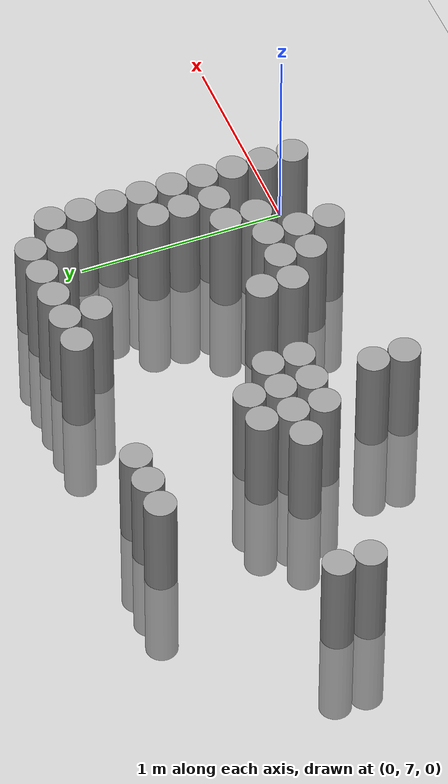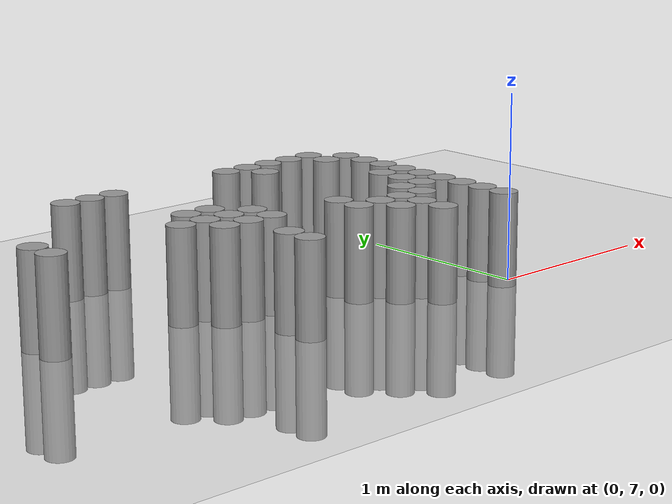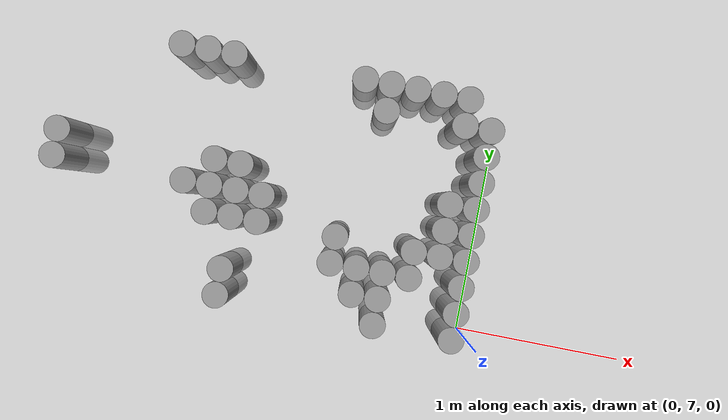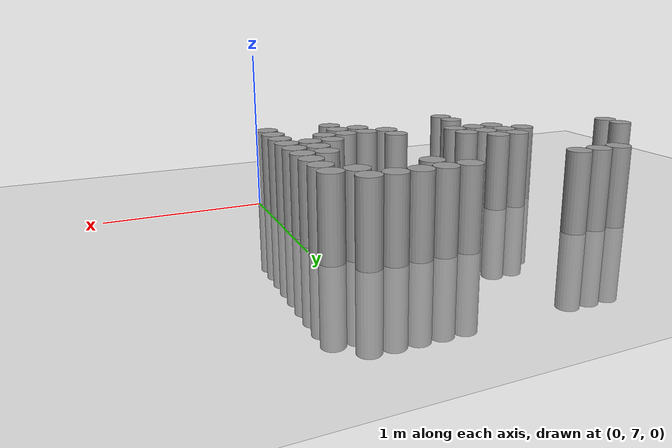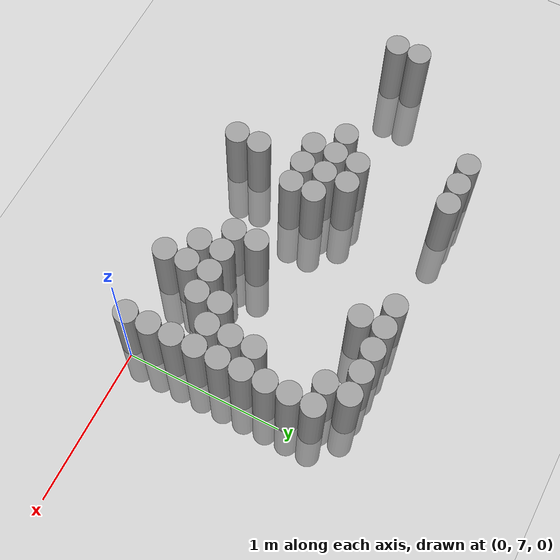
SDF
<sdf version="1.6">
 <world name="default">
  <model name="ground_plane">
   <static>1</static>
   <link name="link">
    <collision name="collision">
     <geometry><plane><normal>0 0 1</normal><size>100 100</size></plane></geometry>
     <surface><friction><ode><mu>100</mu><mu2>50</mu2></ode></friction></surface>
    </collision>
    <visual name="visual">
     <cast_shadows>0</cast_shadows>
     <geometry><plane><normal>0 0 1</normal><size>100 100</size></plane></geometry>
     <material>
      <script><uri>file://media/materials/scripts/gazebo.material</uri><name>Gazebo/Grey</name></script>
     </material>
    </visual>
   </link>
  </model>
  <model name="unit_cylinder_172">
   <pose>-2.475000 7.575000 0.000000 0.000000 0.000000 0.000000</pose>
   <link name="link">
    <inertial>
     <mass>1</mass>
     <inertia><ixx>0.145833</ixx><ixy>0</ixy><ixz>0</ixz><iyy>0.145833</iyy><iyz>0</iyz><izz>0.125</izz></inertia>
    </inertial>
    <collision name="collision">
     <geometry><cylinder><radius>0.075000</radius><length>1</length></cylinder></geometry>
    </collision>
    <visual name="visual">
     <geometry><cylinder><radius>0.075000</radius><length>1</length></cylinder></geometry>
     <material>
      <script><name>Gazebo/Grey</name><uri>file://media/materials/scripts/gazebo.material</uri></script>
     </material>
    </visual>
   </link>
  </model>
  <model name="unit_cylinder_173">
   <pose>-2.475000 7.725000 0.000000 0.000000 0.000000 0.000000</pose>
   <link name="link">
    <inertial>
     <mass>1</mass>
     <inertia><ixx>0.145833</ixx><ixy>0</ixy><ixz>0</ixz><iyy>0.145833</iyy><iyz>0</iyz><izz>0.125</izz></inertia>
    </inertial>
    <collision name="collision">
     <geometry><cylinder><radius>0.075000</radius><length>1</length></cylinder></geometry>
    </collision>
    <visual name="visual">
     <geometry><cylinder><radius>0.075000</radius><length>1</length></cylinder></geometry>
     <material>
      <script><name>Gazebo/Grey</name><uri>file://media/materials/scripts/gazebo.material</uri></script>
     </material>
    </visual>
   </link>
  </model>
  <model name="unit_cylinder_193">
   <pose>-1.875000 8.325000 0.000000 0.000000 0.000000 0.000000</pose>
   <link name="link">
    <inertial>
     <mass>1</mass>
     <inertia><ixx>0.145833</ixx><ixy>0</ixy><ixz>0</ixz><iyy>0.145833</iyy><iyz>0</iyz><izz>0.125</izz></inertia>
    </inertial>
    <collision name="collision">
     <geometry><cylinder><radius>0.075000</radius><length>1</length></cylinder></geometry>
    </collision>
    <visual name="visual">
     <geometry><cylinder><radius>0.075000</radius><length>1</length></cylinder></geometry>
     <material>
      <script><name>Gazebo/Grey</name><uri>file://media/materials/scripts/gazebo.material</uri></script>
     </material>
    </visual>
   </link>
  </model>
  <model name="unit_cylinder_201">
   <pose>-1.725000 7.575000 0.000000 0.000000 0.000000 0.000000</pose>
   <link name="link">
    <inertial>
     <mass>1</mass>
     <inertia><ixx>0.145833</ixx><ixy>0</ixy><ixz>0</ixz><iyy>0.145833</iyy><iyz>0</iyz><izz>0.125</izz></inertia>
    </inertial>
    <collision name="collision">
     <geometry><cylinder><radius>0.075000</radius><length>1</length></cylinder></geometry>
    </collision>
    <visual name="visual">
     <geometry><cylinder><radius>0.075000</radius><length>1</length></cylinder></geometry>
     <material>
      <script><name>Gazebo/Grey</name><uri>file://media/materials/scripts/gazebo.material</uri></script>
     </material>
    </visual>
   </link>
  </model>
  <model name="unit_cylinder_202">
   <pose>-1.725000 8.325000 0.000000 0.000000 0.000000 0.000000</pose>
   <link name="link">
    <inertial>
     <mass>1</mass>
     <inertia><ixx>0.145833</ixx><ixy>0</ixy><ixz>0</ixz><iyy>0.145833</iyy><iyz>0</iyz><izz>0.125</izz></inertia>
    </inertial>
    <collision name="collision">
     <geometry><cylinder><radius>0.075000</radius><length>1</length></cylinder></geometry>
    </collision>
    <visual name="visual">
     <geometry><cylinder><radius>0.075000</radius><length>1</length></cylinder></geometry>
     <material>
      <script><name>Gazebo/Grey</name><uri>file://media/materials/scripts/gazebo.material</uri></script>
     </material>
    </visual>
   </link>
  </model>
  <model name="unit_cylinder_212">
   <pose>-1.575000 7.425000 0.000000 0.000000 0.000000 0.000000</pose>
   <link name="link">
    <inertial>
     <mass>1</mass>
     <inertia><ixx>0.145833</ixx><ixy>0</ixy><ixz>0</ixz><iyy>0.145833</iyy><iyz>0</iyz><izz>0.125</izz></inertia>
    </inertial>
    <collision name="collision">
     <geometry><cylinder><radius>0.075000</radius><length>1</length></cylinder></geometry>
    </collision>
    <visual name="visual">
     <geometry><cylinder><radius>0.075000</radius><length>1</length></cylinder></geometry>
     <material>
      <script><name>Gazebo/Grey</name><uri>file://media/materials/scripts/gazebo.material</uri></script>
     </material>
    </visual>
   </link>
  </model>
  <model name="unit_cylinder_213">
   <pose>-1.575000 7.575000 0.000000 0.000000 0.000000 0.000000</pose>
   <link name="link">
    <inertial>
     <mass>1</mass>
     <inertia><ixx>0.145833</ixx><ixy>0</ixy><ixz>0</ixz><iyy>0.145833</iyy><iyz>0</iyz><izz>0.125</izz></inertia>
    </inertial>
    <collision name="collision">
     <geometry><cylinder><radius>0.075000</radius><length>1</length></cylinder></geometry>
    </collision>
    <visual name="visual">
     <geometry><cylinder><radius>0.075000</radius><length>1</length></cylinder></geometry>
     <material>
      <script><name>Gazebo/Grey</name><uri>file://media/materials/scripts/gazebo.material</uri></script>
     </material>
    </visual>
   </link>
  </model>
  <model name="unit_cylinder_214">
   <pose>-1.575000 7.725000 0.000000 0.000000 0.000000 0.000000</pose>
   <link name="link">
    <inertial>
     <mass>1</mass>
     <inertia><ixx>0.145833</ixx><ixy>0</ixy><ixz>0</ixz><iyy>0.145833</iyy><iyz>0</iyz><izz>0.125</izz></inertia>
    </inertial>
    <collision name="collision">
     <geometry><cylinder><radius>0.075000</radius><length>1</length></cylinder></geometry>
    </collision>
    <visual name="visual">
     <geometry><cylinder><radius>0.075000</radius><length>1</length></cylinder></geometry>
     <material>
      <script><name>Gazebo/Grey</name><uri>file://media/materials/scripts/gazebo.material</uri></script>
     </material>
    </visual>
   </link>
  </model>
  <model name="unit_cylinder_215">
   <pose>-1.575000 8.325000 0.000000 0.000000 0.000000 0.000000</pose>
   <link name="link">
    <inertial>
     <mass>1</mass>
     <inertia><ixx>0.145833</ixx><ixy>0</ixy><ixz>0</ixz><iyy>0.145833</iyy><iyz>0</iyz><izz>0.125</izz></inertia>
    </inertial>
    <collision name="collision">
     <geometry><cylinder><radius>0.075000</radius><length>1</length></cylinder></geometry>
    </collision>
    <visual name="visual">
     <geometry><cylinder><radius>0.075000</radius><length>1</length></cylinder></geometry>
     <material>
      <script><name>Gazebo/Grey</name><uri>file://media/materials/scripts/gazebo.material</uri></script>
     </material>
    </visual>
   </link>
  </model>
  <model name="unit_cylinder_225">
   <pose>-1.425000 6.975000 0.000000 0.000000 0.000000 0.000000</pose>
   <link name="link">
    <inertial>
     <mass>1</mass>
     <inertia><ixx>0.145833</ixx><ixy>0</ixy><ixz>0</ixz><iyy>0.145833</iyy><iyz>0</iyz><izz>0.125</izz></inertia>
    </inertial>
    <collision name="collision">
     <geometry><cylinder><radius>0.075000</radius><length>1</length></cylinder></geometry>
    </collision>
    <visual name="visual">
     <geometry><cylinder><radius>0.075000</radius><length>1</length></cylinder></geometry>
     <material>
      <script><name>Gazebo/Grey</name><uri>file://media/materials/scripts/gazebo.material</uri></script>
     </material>
    </visual>
   </link>
  </model>
  <model name="unit_cylinder_226">
   <pose>-1.425000 7.125000 0.000000 0.000000 0.000000 0.000000</pose>
   <link name="link">
    <inertial>
     <mass>1</mass>
     <inertia><ixx>0.145833</ixx><ixy>0</ixy><ixz>0</ixz><iyy>0.145833</iyy><iyz>0</iyz><izz>0.125</izz></inertia>
    </inertial>
    <collision name="collision">
     <geometry><cylinder><radius>0.075000</radius><length>1</length></cylinder></geometry>
    </collision>
    <visual name="visual">
     <geometry><cylinder><radius>0.075000</radius><length>1</length></cylinder></geometry>
     <material>
      <script><name>Gazebo/Grey</name><uri>file://media/materials/scripts/gazebo.material</uri></script>
     </material>
    </visual>
   </link>
  </model>
  <model name="unit_cylinder_227">
   <pose>-1.425000 7.425000 0.000000 0.000000 0.000000 0.000000</pose>
   <link name="link">
    <inertial>
     <mass>1</mass>
     <inertia><ixx>0.145833</ixx><ixy>0</ixy><ixz>0</ixz><iyy>0.145833</iyy><iyz>0</iyz><izz>0.125</izz></inertia>
    </inertial>
    <collision name="collision">
     <geometry><cylinder><radius>0.075000</radius><length>1</length></cylinder></geometry>
    </collision>
    <visual name="visual">
     <geometry><cylinder><radius>0.075000</radius><length>1</length></cylinder></geometry>
     <material>
      <script><name>Gazebo/Grey</name><uri>file://media/materials/scripts/gazebo.material</uri></script>
     </material>
    </visual>
   </link>
  </model>
  <model name="unit_cylinder_228">
   <pose>-1.425000 7.575000 0.000000 0.000000 0.000000 0.000000</pose>
   <link name="link">
    <inertial>
     <mass>1</mass>
     <inertia><ixx>0.145833</ixx><ixy>0</ixy><ixz>0</ixz><iyy>0.145833</iyy><iyz>0</iyz><izz>0.125</izz></inertia>
    </inertial>
    <collision name="collision">
     <geometry><cylinder><radius>0.075000</radius><length>1</length></cylinder></geometry>
    </collision>
    <visual name="visual">
     <geometry><cylinder><radius>0.075000</radius><length>1</length></cylinder></geometry>
     <material>
      <script><name>Gazebo/Grey</name><uri>file://media/materials/scripts/gazebo.material</uri></script>
     </material>
    </visual>
   </link>
  </model>
  <model name="unit_cylinder_229">
   <pose>-1.425000 7.725000 0.000000 0.000000 0.000000 0.000000</pose>
   <link name="link">
    <inertial>
     <mass>1</mass>
     <inertia><ixx>0.145833</ixx><ixy>0</ixy><ixz>0</ixz><iyy>0.145833</iyy><iyz>0</iyz><izz>0.125</izz></inertia>
    </inertial>
    <collision name="collision">
     <geometry><cylinder><radius>0.075000</radius><length>1</length></cylinder></geometry>
    </collision>
    <visual name="visual">
     <geometry><cylinder><radius>0.075000</radius><length>1</length></cylinder></geometry>
     <material>
      <script><name>Gazebo/Grey</name><uri>file://media/materials/scripts/gazebo.material</uri></script>
     </material>
    </visual>
   </link>
  </model>
  <model name="unit_cylinder_243">
   <pose>-1.275000 7.425000 0.000000 0.000000 0.000000 0.000000</pose>
   <link name="link">
    <inertial>
     <mass>1</mass>
     <inertia><ixx>0.145833</ixx><ixy>0</ixy><ixz>0</ixz><iyy>0.145833</iyy><iyz>0</iyz><izz>0.125</izz></inertia>
    </inertial>
    <collision name="collision">
     <geometry><cylinder><radius>0.075000</radius><length>1</length></cylinder></geometry>
    </collision>
    <visual name="visual">
     <geometry><cylinder><radius>0.075000</radius><length>1</length></cylinder></geometry>
     <material>
      <script><name>Gazebo/Grey</name><uri>file://media/materials/scripts/gazebo.material</uri></script>
     </material>
    </visual>
   </link>
  </model>
  <model name="unit_cylinder_244">
   <pose>-1.275000 7.575000 0.000000 0.000000 0.000000 0.000000</pose>
   <link name="link">
    <inertial>
     <mass>1</mass>
     <inertia><ixx>0.145833</ixx><ixy>0</ixy><ixz>0</ixz><iyy>0.145833</iyy><iyz>0</iyz><izz>0.125</izz></inertia>
    </inertial>
    <collision name="collision">
     <geometry><cylinder><radius>0.075000</radius><length>1</length></cylinder></geometry>
    </collision>
    <visual name="visual">
     <geometry><cylinder><radius>0.075000</radius><length>1</length></cylinder></geometry>
     <material>
      <script><name>Gazebo/Grey</name><uri>file://media/materials/scripts/gazebo.material</uri></script>
     </material>
    </visual>
   </link>
  </model>
  <model name="unit_cylinder_255">
   <pose>-0.825000 7.275000 0.000000 0.000000 0.000000 0.000000</pose>
   <link name="link">
    <inertial>
     <mass>1</mass>
     <inertia><ixx>0.145833</ixx><ixy>0</ixy><ixz>0</ixz><iyy>0.145833</iyy><iyz>0</iyz><izz>0.125</izz></inertia>
    </inertial>
    <collision name="collision">
     <geometry><cylinder><radius>0.075000</radius><length>1</length></cylinder></geometry>
    </collision>
    <visual name="visual">
     <geometry><cylinder><radius>0.075000</radius><length>1</length></cylinder></geometry>
     <material>
      <script><name>Gazebo/Grey</name><uri>file://media/materials/scripts/gazebo.material</uri></script>
     </material>
    </visual>
   </link>
  </model>
  <model name="unit_cylinder_256">
   <pose>-0.825000 7.425000 0.000000 0.000000 0.000000 0.000000</pose>
   <link name="link">
    <inertial>
     <mass>1</mass>
     <inertia><ixx>0.145833</ixx><ixy>0</ixy><ixz>0</ixz><iyy>0.145833</iyy><iyz>0</iyz><izz>0.125</izz></inertia>
    </inertial>
    <collision name="collision">
     <geometry><cylinder><radius>0.075000</radius><length>1</length></cylinder></geometry>
    </collision>
    <visual name="visual">
     <geometry><cylinder><radius>0.075000</radius><length>1</length></cylinder></geometry>
     <material>
      <script><name>Gazebo/Grey</name><uri>file://media/materials/scripts/gazebo.material</uri></script>
     </material>
    </visual>
   </link>
  </model>
  <model name="unit_cylinder_257">
   <pose>-0.825000 8.325000 0.000000 0.000000 0.000000 0.000000</pose>
   <link name="link">
    <inertial>
     <mass>1</mass>
     <inertia><ixx>0.145833</ixx><ixy>0</ixy><ixz>0</ixz><iyy>0.145833</iyy><iyz>0</iyz><izz>0.125</izz></inertia>
    </inertial>
    <collision name="collision">
     <geometry><cylinder><radius>0.075000</radius><length>1</length></cylinder></geometry>
    </collision>
    <visual name="visual">
     <geometry><cylinder><radius>0.075000</radius><length>1</length></cylinder></geometry>
     <material>
      <script><name>Gazebo/Grey</name><uri>file://media/materials/scripts/gazebo.material</uri></script>
     </material>
    </visual>
   </link>
  </model>
  <model name="unit_cylinder_258">
   <pose>-0.675000 7.125000 0.000000 0.000000 0.000000 0.000000</pose>
   <link name="link">
    <inertial>
     <mass>1</mass>
     <inertia><ixx>0.145833</ixx><ixy>0</ixy><ixz>0</ixz><iyy>0.145833</iyy><iyz>0</iyz><izz>0.125</izz></inertia>
    </inertial>
    <collision name="collision">
     <geometry><cylinder><radius>0.075000</radius><length>1</length></cylinder></geometry>
    </collision>
    <visual name="visual">
     <geometry><cylinder><radius>0.075000</radius><length>1</length></cylinder></geometry>
     <material>
      <script><name>Gazebo/Grey</name><uri>file://media/materials/scripts/gazebo.material</uri></script>
     </material>
    </visual>
   </link>
  </model>
  <model name="unit_cylinder_259">
   <pose>-0.675000 7.275000 0.000000 0.000000 0.000000 0.000000</pose>
   <link name="link">
    <inertial>
     <mass>1</mass>
     <inertia><ixx>0.145833</ixx><ixy>0</ixy><ixz>0</ixz><iyy>0.145833</iyy><iyz>0</iyz><izz>0.125</izz></inertia>
    </inertial>
    <collision name="collision">
     <geometry><cylinder><radius>0.075000</radius><length>1</length></cylinder></geometry>
    </collision>
    <visual name="visual">
     <geometry><cylinder><radius>0.075000</radius><length>1</length></cylinder></geometry>
     <material>
      <script><name>Gazebo/Grey</name><uri>file://media/materials/scripts/gazebo.material</uri></script>
     </material>
    </visual>
   </link>
  </model>
  <model name="unit_cylinder_260">
   <pose>-0.675000 8.175000 0.000000 0.000000 0.000000 0.000000</pose>
   <link name="link">
    <inertial>
     <mass>1</mass>
     <inertia><ixx>0.145833</ixx><ixy>0</ixy><ixz>0</ixz><iyy>0.145833</iyy><iyz>0</iyz><izz>0.125</izz></inertia>
    </inertial>
    <collision name="collision">
     <geometry><cylinder><radius>0.075000</radius><length>1</length></cylinder></geometry>
    </collision>
    <visual name="visual">
     <geometry><cylinder><radius>0.075000</radius><length>1</length></cylinder></geometry>
     <material>
      <script><name>Gazebo/Grey</name><uri>file://media/materials/scripts/gazebo.material</uri></script>
     </material>
    </visual>
   </link>
  </model>
  <model name="unit_cylinder_261">
   <pose>-0.675000 8.325000 0.000000 0.000000 0.000000 0.000000</pose>
   <link name="link">
    <inertial>
     <mass>1</mass>
     <inertia><ixx>0.145833</ixx><ixy>0</ixy><ixz>0</ixz><iyy>0.145833</iyy><iyz>0</iyz><izz>0.125</izz></inertia>
    </inertial>
    <collision name="collision">
     <geometry><cylinder><radius>0.075000</radius><length>1</length></cylinder></geometry>
    </collision>
    <visual name="visual">
     <geometry><cylinder><radius>0.075000</radius><length>1</length></cylinder></geometry>
     <material>
      <script><name>Gazebo/Grey</name><uri>file://media/materials/scripts/gazebo.material</uri></script>
     </material>
    </visual>
   </link>
  </model>
  <model name="unit_cylinder_264">
   <pose>-0.525000 6.975000 0.000000 0.000000 0.000000 0.000000</pose>
   <link name="link">
    <inertial>
     <mass>1</mass>
     <inertia><ixx>0.145833</ixx><ixy>0</ixy><ixz>0</ixz><iyy>0.145833</iyy><iyz>0</iyz><izz>0.125</izz></inertia>
    </inertial>
    <collision name="collision">
     <geometry><cylinder><radius>0.075000</radius><length>1</length></cylinder></geometry>
    </collision>
    <visual name="visual">
     <geometry><cylinder><radius>0.075000</radius><length>1</length></cylinder></geometry>
     <material>
      <script><name>Gazebo/Grey</name><uri>file://media/materials/scripts/gazebo.material</uri></script>
     </material>
    </visual>
   </link>
  </model>
  <model name="unit_cylinder_265">
   <pose>-0.525000 7.125000 0.000000 0.000000 0.000000 0.000000</pose>
   <link name="link">
    <inertial>
     <mass>1</mass>
     <inertia><ixx>0.145833</ixx><ixy>0</ixy><ixz>0</ixz><iyy>0.145833</iyy><iyz>0</iyz><izz>0.125</izz></inertia>
    </inertial>
    <collision name="collision">
     <geometry><cylinder><radius>0.075000</radius><length>1</length></cylinder></geometry>
    </collision>
    <visual name="visual">
     <geometry><cylinder><radius>0.075000</radius><length>1</length></cylinder></geometry>
     <material>
      <script><name>Gazebo/Grey</name><uri>file://media/materials/scripts/gazebo.material</uri></script>
     </material>
    </visual>
   </link>
  </model>
  <model name="unit_cylinder_266">
   <pose>-0.525000 7.275000 0.000000 0.000000 0.000000 0.000000</pose>
   <link name="link">
    <inertial>
     <mass>1</mass>
     <inertia><ixx>0.145833</ixx><ixy>0</ixy><ixz>0</ixz><iyy>0.145833</iyy><iyz>0</iyz><izz>0.125</izz></inertia>
    </inertial>
    <collision name="collision">
     <geometry><cylinder><radius>0.075000</radius><length>1</length></cylinder></geometry>
    </collision>
    <visual name="visual">
     <geometry><cylinder><radius>0.075000</radius><length>1</length></cylinder></geometry>
     <material>
      <script><name>Gazebo/Grey</name><uri>file://media/materials/scripts/gazebo.material</uri></script>
     </material>
    </visual>
   </link>
  </model>
  <model name="unit_cylinder_267">
   <pose>-0.525000 8.325000 0.000000 0.000000 0.000000 0.000000</pose>
   <link name="link">
    <inertial>
     <mass>1</mass>
     <inertia><ixx>0.145833</ixx><ixy>0</ixy><ixz>0</ixz><iyy>0.145833</iyy><iyz>0</iyz><izz>0.125</izz></inertia>
    </inertial>
    <collision name="collision">
     <geometry><cylinder><radius>0.075000</radius><length>1</length></cylinder></geometry>
    </collision>
    <visual name="visual">
     <geometry><cylinder><radius>0.075000</radius><length>1</length></cylinder></geometry>
     <material>
      <script><name>Gazebo/Grey</name><uri>file://media/materials/scripts/gazebo.material</uri></script>
     </material>
    </visual>
   </link>
  </model>
  <model name="unit_cylinder_275">
   <pose>-0.375000 7.275000 0.000000 0.000000 0.000000 0.000000</pose>
   <link name="link">
    <inertial>
     <mass>1</mass>
     <inertia><ixx>0.145833</ixx><ixy>0</ixy><ixz>0</ixz><iyy>0.145833</iyy><iyz>0</iyz><izz>0.125</izz></inertia>
    </inertial>
    <collision name="collision">
     <geometry><cylinder><radius>0.075000</radius><length>1</length></cylinder></geometry>
    </collision>
    <visual name="visual">
     <geometry><cylinder><radius>0.075000</radius><length>1</length></cylinder></geometry>
     <material>
      <script><name>Gazebo/Grey</name><uri>file://media/materials/scripts/gazebo.material</uri></script>
     </material>
    </visual>
   </link>
  </model>
  <model name="unit_cylinder_276">
   <pose>-0.375000 7.425000 0.000000 0.000000 0.000000 0.000000</pose>
   <link name="link">
    <inertial>
     <mass>1</mass>
     <inertia><ixx>0.145833</ixx><ixy>0</ixy><ixz>0</ixz><iyy>0.145833</iyy><iyz>0</iyz><izz>0.125</izz></inertia>
    </inertial>
    <collision name="collision">
     <geometry><cylinder><radius>0.075000</radius><length>1</length></cylinder></geometry>
    </collision>
    <visual name="visual">
     <geometry><cylinder><radius>0.075000</radius><length>1</length></cylinder></geometry>
     <material>
      <script><name>Gazebo/Grey</name><uri>file://media/materials/scripts/gazebo.material</uri></script>
     </material>
    </visual>
   </link>
  </model>
  <model name="unit_cylinder_277">
   <pose>-0.375000 8.325000 0.000000 0.000000 0.000000 0.000000</pose>
   <link name="link">
    <inertial>
     <mass>1</mass>
     <inertia><ixx>0.145833</ixx><ixy>0</ixy><ixz>0</ixz><iyy>0.145833</iyy><iyz>0</iyz><izz>0.125</izz></inertia>
    </inertial>
    <collision name="collision">
     <geometry><cylinder><radius>0.075000</radius><length>1</length></cylinder></geometry>
    </collision>
    <visual name="visual">
     <geometry><cylinder><radius>0.075000</radius><length>1</length></cylinder></geometry>
     <material>
      <script><name>Gazebo/Grey</name><uri>file://media/materials/scripts/gazebo.material</uri></script>
     </material>
    </visual>
   </link>
  </model>
  <model name="unit_cylinder_290">
   <pose>-0.225000 7.425000 0.000000 0.000000 0.000000 0.000000</pose>
   <link name="link">
    <inertial>
     <mass>1</mass>
     <inertia><ixx>0.145833</ixx><ixy>0</ixy><ixz>0</ixz><iyy>0.145833</iyy><iyz>0</iyz><izz>0.125</izz></inertia>
    </inertial>
    <collision name="collision">
     <geometry><cylinder><radius>0.075000</radius><length>1</length></cylinder></geometry>
    </collision>
    <visual name="visual">
     <geometry><cylinder><radius>0.075000</radius><length>1</length></cylinder></geometry>
     <material>
      <script><name>Gazebo/Grey</name><uri>file://media/materials/scripts/gazebo.material</uri></script>
     </material>
    </visual>
   </link>
  </model>
  <model name="unit_cylinder_291">
   <pose>-0.225000 7.575000 0.000000 0.000000 0.000000 0.000000</pose>
   <link name="link">
    <inertial>
     <mass>1</mass>
     <inertia><ixx>0.145833</ixx><ixy>0</ixy><ixz>0</ixz><iyy>0.145833</iyy><iyz>0</iyz><izz>0.125</izz></inertia>
    </inertial>
    <collision name="collision">
     <geometry><cylinder><radius>0.075000</radius><length>1</length></cylinder></geometry>
    </collision>
    <visual name="visual">
     <geometry><cylinder><radius>0.075000</radius><length>1</length></cylinder></geometry>
     <material>
      <script><name>Gazebo/Grey</name><uri>file://media/materials/scripts/gazebo.material</uri></script>
     </material>
    </visual>
   </link>
  </model>
  <model name="unit_cylinder_292">
   <pose>-0.225000 7.725000 0.000000 0.000000 0.000000 0.000000</pose>
   <link name="link">
    <inertial>
     <mass>1</mass>
     <inertia><ixx>0.145833</ixx><ixy>0</ixy><ixz>0</ixz><iyy>0.145833</iyy><iyz>0</iyz><izz>0.125</izz></inertia>
    </inertial>
    <collision name="collision">
     <geometry><cylinder><radius>0.075000</radius><length>1</length></cylinder></geometry>
    </collision>
    <visual name="visual">
     <geometry><cylinder><radius>0.075000</radius><length>1</length></cylinder></geometry>
     <material>
      <script><name>Gazebo/Grey</name><uri>file://media/materials/scripts/gazebo.material</uri></script>
     </material>
    </visual>
   </link>
  </model>
  <model name="unit_cylinder_293">
   <pose>-0.225000 8.175000 0.000000 0.000000 0.000000 0.000000</pose>
   <link name="link">
    <inertial>
     <mass>1</mass>
     <inertia><ixx>0.145833</ixx><ixy>0</ixy><ixz>0</ixz><iyy>0.145833</iyy><iyz>0</iyz><izz>0.125</izz></inertia>
    </inertial>
    <collision name="collision">
     <geometry><cylinder><radius>0.075000</radius><length>1</length></cylinder></geometry>
    </collision>
    <visual name="visual">
     <geometry><cylinder><radius>0.075000</radius><length>1</length></cylinder></geometry>
     <material>
      <script><name>Gazebo/Grey</name><uri>file://media/materials/scripts/gazebo.material</uri></script>
     </material>
    </visual>
   </link>
  </model>
  <model name="unit_cylinder_294">
   <pose>-0.225000 8.325000 0.000000 0.000000 0.000000 0.000000</pose>
   <link name="link">
    <inertial>
     <mass>1</mass>
     <inertia><ixx>0.145833</ixx><ixy>0</ixy><ixz>0</ixz><iyy>0.145833</iyy><iyz>0</iyz><izz>0.125</izz></inertia>
    </inertial>
    <collision name="collision">
     <geometry><cylinder><radius>0.075000</radius><length>1</length></cylinder></geometry>
    </collision>
    <visual name="visual">
     <geometry><cylinder><radius>0.075000</radius><length>1</length></cylinder></geometry>
     <material>
      <script><name>Gazebo/Grey</name><uri>file://media/materials/scripts/gazebo.material</uri></script>
     </material>
    </visual>
   </link>
  </model>
  <model name="unit_cylinder_313">
   <pose>-0.075000 6.975000 0.000000 0.000000 0.000000 0.000000</pose>
   <link name="link">
    <inertial>
     <mass>1</mass>
     <inertia><ixx>0.145833</ixx><ixy>0</ixy><ixz>0</ixz><iyy>0.145833</iyy><iyz>0</iyz><izz>0.125</izz></inertia>
    </inertial>
    <collision name="collision">
     <geometry><cylinder><radius>0.075000</radius><length>1</length></cylinder></geometry>
    </collision>
    <visual name="visual">
     <geometry><cylinder><radius>0.075000</radius><length>1</length></cylinder></geometry>
     <material>
      <script><name>Gazebo/Grey</name><uri>file://media/materials/scripts/gazebo.material</uri></script>
     </material>
    </visual>
   </link>
  </model>
  <model name="unit_cylinder_314">
   <pose>-0.075000 7.125000 0.000000 0.000000 0.000000 0.000000</pose>
   <link name="link">
    <inertial>
     <mass>1</mass>
     <inertia><ixx>0.145833</ixx><ixy>0</ixy><ixz>0</ixz><iyy>0.145833</iyy><iyz>0</iyz><izz>0.125</izz></inertia>
    </inertial>
    <collision name="collision">
     <geometry><cylinder><radius>0.075000</radius><length>1</length></cylinder></geometry>
    </collision>
    <visual name="visual">
     <geometry><cylinder><radius>0.075000</radius><length>1</length></cylinder></geometry>
     <material>
      <script><name>Gazebo/Grey</name><uri>file://media/materials/scripts/gazebo.material</uri></script>
     </material>
    </visual>
   </link>
  </model>
  <model name="unit_cylinder_315">
   <pose>-0.075000 7.275000 0.000000 0.000000 0.000000 0.000000</pose>
   <link name="link">
    <inertial>
     <mass>1</mass>
     <inertia><ixx>0.145833</ixx><ixy>0</ixy><ixz>0</ixz><iyy>0.145833</iyy><iyz>0</iyz><izz>0.125</izz></inertia>
    </inertial>
    <collision name="collision">
     <geometry><cylinder><radius>0.075000</radius><length>1</length></cylinder></geometry>
    </collision>
    <visual name="visual">
     <geometry><cylinder><radius>0.075000</radius><length>1</length></cylinder></geometry>
     <material>
      <script><name>Gazebo/Grey</name><uri>file://media/materials/scripts/gazebo.material</uri></script>
     </material>
    </visual>
   </link>
  </model>
  <model name="unit_cylinder_316">
   <pose>-0.075000 7.425000 0.000000 0.000000 0.000000 0.000000</pose>
   <link name="link">
    <inertial>
     <mass>1</mass>
     <inertia><ixx>0.145833</ixx><ixy>0</ixy><ixz>0</ixz><iyy>0.145833</iyy><iyz>0</iyz><izz>0.125</izz></inertia>
    </inertial>
    <collision name="collision">
     <geometry><cylinder><radius>0.075000</radius><length>1</length></cylinder></geometry>
    </collision>
    <visual name="visual">
     <geometry><cylinder><radius>0.075000</radius><length>1</length></cylinder></geometry>
     <material>
      <script><name>Gazebo/Grey</name><uri>file://media/materials/scripts/gazebo.material</uri></script>
     </material>
    </visual>
   </link>
  </model>
  <model name="unit_cylinder_317">
   <pose>-0.075000 7.575000 0.000000 0.000000 0.000000 0.000000</pose>
   <link name="link">
    <inertial>
     <mass>1</mass>
     <inertia><ixx>0.145833</ixx><ixy>0</ixy><ixz>0</ixz><iyy>0.145833</iyy><iyz>0</iyz><izz>0.125</izz></inertia>
    </inertial>
    <collision name="collision">
     <geometry><cylinder><radius>0.075000</radius><length>1</length></cylinder></geometry>
    </collision>
    <visual name="visual">
     <geometry><cylinder><radius>0.075000</radius><length>1</length></cylinder></geometry>
     <material>
      <script><name>Gazebo/Grey</name><uri>file://media/materials/scripts/gazebo.material</uri></script>
     </material>
    </visual>
   </link>
  </model>
  <model name="unit_cylinder_318">
   <pose>-0.075000 7.725000 0.000000 0.000000 0.000000 0.000000</pose>
   <link name="link">
    <inertial>
     <mass>1</mass>
     <inertia><ixx>0.145833</ixx><ixy>0</ixy><ixz>0</ixz><iyy>0.145833</iyy><iyz>0</iyz><izz>0.125</izz></inertia>
    </inertial>
    <collision name="collision">
     <geometry><cylinder><radius>0.075000</radius><length>1</length></cylinder></geometry>
    </collision>
    <visual name="visual">
     <geometry><cylinder><radius>0.075000</radius><length>1</length></cylinder></geometry>
     <material>
      <script><name>Gazebo/Grey</name><uri>file://media/materials/scripts/gazebo.material</uri></script>
     </material>
    </visual>
   </link>
  </model>
  <model name="unit_cylinder_319">
   <pose>-0.075000 7.875000 0.000000 0.000000 0.000000 0.000000</pose>
   <link name="link">
    <inertial>
     <mass>1</mass>
     <inertia><ixx>0.145833</ixx><ixy>0</ixy><ixz>0</ixz><iyy>0.145833</iyy><iyz>0</iyz><izz>0.125</izz></inertia>
    </inertial>
    <collision name="collision">
     <geometry><cylinder><radius>0.075000</radius><length>1</length></cylinder></geometry>
    </collision>
    <visual name="visual">
     <geometry><cylinder><radius>0.075000</radius><length>1</length></cylinder></geometry>
     <material>
      <script><name>Gazebo/Grey</name><uri>file://media/materials/scripts/gazebo.material</uri></script>
     </material>
    </visual>
   </link>
  </model>
  <model name="unit_cylinder_320">
   <pose>-0.075000 8.025000 0.000000 0.000000 0.000000 0.000000</pose>
   <link name="link">
    <inertial>
     <mass>1</mass>
     <inertia><ixx>0.145833</ixx><ixy>0</ixy><ixz>0</ixz><iyy>0.145833</iyy><iyz>0</iyz><izz>0.125</izz></inertia>
    </inertial>
    <collision name="collision">
     <geometry><cylinder><radius>0.075000</radius><length>1</length></cylinder></geometry>
    </collision>
    <visual name="visual">
     <geometry><cylinder><radius>0.075000</radius><length>1</length></cylinder></geometry>
     <material>
      <script><name>Gazebo/Grey</name><uri>file://media/materials/scripts/gazebo.material</uri></script>
     </material>
    </visual>
   </link>
  </model>
  <model name="unit_cylinder_321">
   <pose>-0.075000 8.175000 0.000000 0.000000 0.000000 0.000000</pose>
   <link name="link">
    <inertial>
     <mass>1</mass>
     <inertia><ixx>0.145833</ixx><ixy>0</ixy><ixz>0</ixz><iyy>0.145833</iyy><iyz>0</iyz><izz>0.125</izz></inertia>
    </inertial>
    <collision name="collision">
     <geometry><cylinder><radius>0.075000</radius><length>1</length></cylinder></geometry>
    </collision>
    <visual name="visual">
     <geometry><cylinder><radius>0.075000</radius><length>1</length></cylinder></geometry>
     <material>
      <script><name>Gazebo/Grey</name><uri>file://media/materials/scripts/gazebo.material</uri></script>
     </material>
    </visual>
   </link>
  </model>
 </world>
</sdf>
